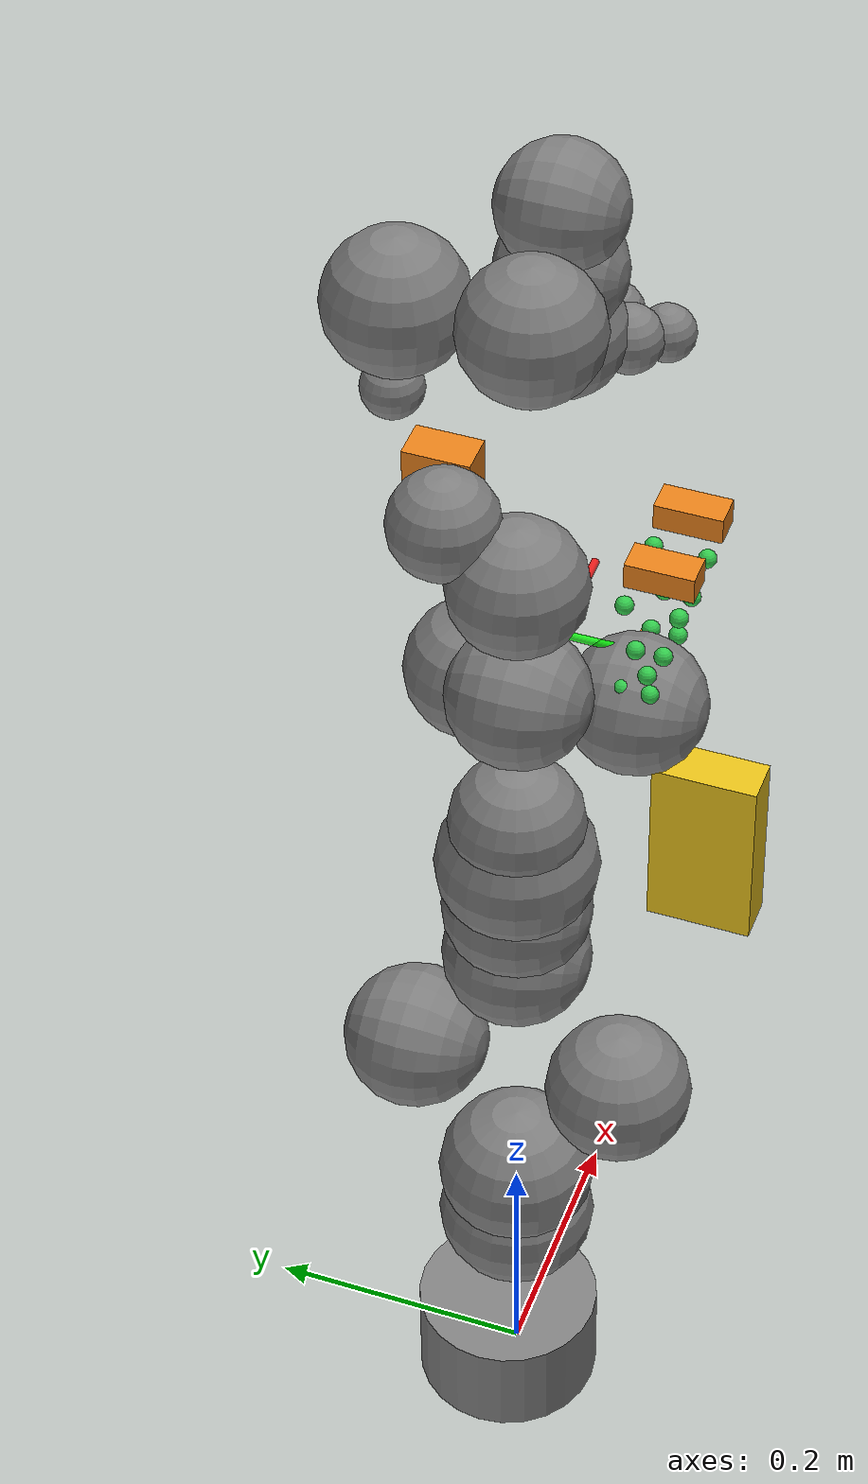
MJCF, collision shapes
<mujoco model="fr3_H_gripper">

  <compiler angle="radian" meshdir="assets" />

  <option integrator="implicitfast" timestep="0.001" solver="Newton" iterations="100" jacobian="auto" tolerance="1e-8" cone="pyramidal" impratio="1" gravity="0 0 -9.81" />
  <option>
    <flag gravity="enable" override="enable" multiccd="enable" />
  </option>

  <default>

    <default class="fr3">
      <joint damping="0.21" armature="0.195" />
      <default class="visual_fr3">
        <geom type="mesh" group="2" contype="0" conaffinity="0" />
      </default>
      <default class="collision">
        <geom type="mesh" group="3" mass="0" density="0" />
      </default>
      <site size="0.001" rgba="0.5 0.5 0.5 0.3" group="4" />
    </default>

    <default class="H_gripper">
      <joint armature="0.1" damping="1.0" />
      <default class="visual">
        <geom type="mesh" contype="0" conaffinity="0" group="1" />
      </default>
      <default class="fingertip_pad_collision_1">
        <geom type="box" group="2" size="0.004 0.007 0.0135" contype="1" conaffinity="1" mass="0.01" pos="0.012 0.0 0.018" solref="0.02 1" solimp="0.95 0.99 0.001" friction="2.0 0.05 0.02" priority="3" rgba="1 0 0 0.5" />
      </default>
      <default class="fingertip_pad_collision_2">
        <geom type="box" group="2" size="0.004 0.007 0.0135" contype="1" conaffinity="1" mass="0.01" pos="-0.012 0.0 0.018" solref="0.02 1" solimp="0.95 0.99 0.001" friction="2.0 0.05 0.02" priority="3" rgba="1 0 0 0.5" />
      </default>
      <default class="rotate_A_link_collision">
        <geom type="box" group="2" size="0.025 0.015 0.025" contype="1" conaffinity="1" mass="0.01" pos="0.085 0 -0.003" solref="0.02 1" solimp="0.95 0.99 0.001" friction="2.0 0.05 0.02" priority="3" rgba="1 0 0 0.5" />
      </default>
      <default class="rotate_B_link_collision">
        <geom type="box" group="2" size="0.025 0.012 0.01" contype="1" conaffinity="1" mass="0.01" pos="-0.085 0.032 0.01" solref="0.02 1" solimp="0.95 0.99 0.001" friction="2.0 0.05 0.02" priority="3" rgba="1 0 0 0.5" />
      </default>
      <default class="rotate_C_link_collision">
        <geom type="box" group="2" size="0.025 0.012 0.01" contype="1" conaffinity="1" mass="0.01" pos="-0.085 -0.032 0.01" solref="0.02 1" solimp="0.95 0.99 0.001" friction="2.0 0.05 0.02" priority="3" rgba="1 0 0 0.5" />
      </default>
    </default>
  </default>

  <asset>
    <mesh name="sugar_mesh" file="../../Fr3HGripperCarry/obj/textured_simple.obj"/>
    <material name="black" rgba=".2 .2 .2 1" />
    <material name="white" rgba="1 1 1 1" />
    <material name="red" rgba="1 0.072272 0.039546 1" />
    <material name="gray" rgba="0.863156 0.863156 0.863157 1" />
    <material name="button_green" rgba="0.102241 0.571125 0.102242 1" />
    <material name="button_red" rgba="0.520996 0.008023 0.013702 1" />
    <material name="button_blue" rgba="0.024157 0.445201 0.737911 1" />
    <material name="off_white" rgba="0.901961 0.921569 0.929412 1" />

    <mesh file="link0_0.obj" />
    <mesh file="link0_1.obj" />
    <mesh file="link0_2.obj" />
    <mesh file="link0_3.obj" />
    <mesh file="link0_4.obj" />
    <mesh file="link0_5.obj" />
    <mesh file="link0_6.obj" />
    <mesh file="link1.obj" />
    <mesh file="link2.obj" />
    <mesh file="link3_0.obj" />
    <mesh file="link3_1.obj" />
    <mesh file="link4_0.obj" />
    <mesh file="link4_1.obj" />
    <mesh file="link5_0.obj" />
    <mesh file="link5_1.obj" />
    <mesh file="link5_2.obj" />
    <mesh file="link6_0.obj" />
    <mesh file="link6_1.obj" />
    <mesh file="link6_2.obj" />
    <mesh file="link6_3.obj" />
    <mesh file="link6_4.obj" />
    <mesh file="link6_5.obj" />
    <mesh file="link6_6.obj" />
    <mesh file="link6_7.obj" />
    <mesh file="link7_0.obj" />
    <mesh file="link7_1.obj" />
    <mesh file="link7_2.obj" />
    <mesh file="link7_3.obj" />

  </asset>

  <worldbody>

        <geom mesh="link0_0" material="black" class="visual_fr3" />
        <geom mesh="link0_1" material="white" class="visual_fr3" />
        <geom mesh="link0_2" material="white" class="visual_fr3" />
        <geom mesh="link0_3" material="white" class="visual_fr3" />
        <geom mesh="link0_4" material="white" class="visual_fr3" />
        <geom mesh="link0_5" material="red" class="visual_fr3" />
        <geom mesh="link0_6" material="black" class="visual_fr3" />

        <geom name="link0_R_col" type="cylinder" size="0.07 0.04" pos="-0.02 0 0.04" class="collision" />

        <body name="fr3_link1" pos="0 0 0.333" childclass="fr3" gravcomp="1">
          <geom name="col_link1_0" type="sphere" size="0.055" pos="0.000 -0.080 0.000" contype="0" conaffinity="0" class="collision" />
          <geom name="col_link1_1" type="sphere" size="0.060" pos="0.000 0.000 -0.120" contype="0" conaffinity="0" class="collision" />
          <geom name="col_link1_2" type="sphere" size="0.060" pos="0.000 0.000 -0.170" contype="0" conaffinity="0" class="collision" />
          <inertial pos="4.128e-07 -0.0181251 -0.0386036" quat="0.998098 -0.0605364 0.00380499 0.0110109" mass="2.92747" diaginertia="0.0239286 0.0227246 0.00610634" />
          <joint name="fr3_joint1" axis="0 0 1" range="-2.7437 2.7437" actuatorfrcrange="-87 87" />

          <geom material="white" mesh="link1" class="visual_fr3" />
          <body name="fr3_link2" quat="1 -1 0 0" gravcomp="1">
            <geom name="col_link2_0" type="sphere" size="0.055" pos="0.000 0.000 0.080" class="collision" />
            <geom name="col_link2_1" type="sphere" size="0.055" pos="0.000 -0.120 0.000" class="collision" />
            <geom name="col_link2_2" type="sphere" size="0.055" pos="0.000 -0.170 0.000" class="collision" />
            <inertial pos="0.00318289 -0.0743222 0.00881461" quat="0.502599 0.584437 -0.465998 0.434366" mass="2.93554" diaginertia="0.0629567 0.0411924 0.0246371" />
            <joint name="fr3_joint2" axis="0 0 1" range="-1.7837 1.7837" actuatorfrcrange="-87 87" />
            <geom material="white" mesh="link2" class="visual_fr3" />

            <body name="fr3_link3" pos="0 -0.316 0" quat="1 1 0 0" gravcomp="1">
              <geom name="col_link3_0" type="sphere" size="0.050" pos="0.000 0.000 -0.060" class="collision" />
              <geom name="col_link3_1" type="sphere" size="0.060" pos="0.000 0.000 -0.100" class="collision" />
              <geom name="col_link3_2" type="sphere" size="0.052" pos="0.080 0.060 0.000" class="collision" />
              <inertial pos="0.0407016 -0.00482006 -0.0289731" quat="0.921025 -0.244161 0.155272 0.260745" mass="2.2449" diaginertia="0.0267409 0.0189869 0.0171587" />
              <joint name="fr3_joint3" axis="0 0 1" range="-2.9007 2.9007" actuatorfrcrange="-87 87" />
              <geom mesh="link3_0" material="white" class="visual_fr3" />
              <geom mesh="link3_1" material="black" class="visual_fr3" />

              <body name="fr3_link4" pos="0.0825 0 0" quat="1 1 0 0" gravcomp="1">
                <geom name="col_link4_0" type="sphere" size="0.052" pos="0.000 0.000 0.060" class="collision" />
                <geom name="col_link4_1" type="sphere" size="0.052" pos="-0.080 0.060 0.000" class="collision" />
                <inertial pos="-0.0459101 0.0630493 -0.00851879" quat="0.438018 0.803311 0.00937812 0.403414" mass="2.6156" diaginertia="0.05139 0.0372717 0.0160047" />
                <joint name="fr3_joint4" axis="0 0 1" range="-3.0421 -0.1518" actuatorfrcrange="-87 87" />
                <geom mesh="link4_0" material="white" class="visual_fr3" />
                <geom mesh="link4_1" material="black" class="visual_fr3" />

                <body name="fr3_link5" pos="-0.0825 0.384 0" quat="1 -1 0 0" gravcomp="1">
                  <geom name="col_link5_0" type="sphere" size="0.050" pos="0.000 0.082 0.000" class="collision" />
                  <geom name="col_link5_1" type="sphere" size="0.050" pos="0.000 0.000 -0.220" class="collision" />
                  <geom name="col_link5_2" type="sphere" size="0.050" pos="0.000 -0.009 0.000" class="collision" />
                  <geom name="col_link5_3" type="sphere" size="0.040" pos="0.000 0.052 -0.180" class="collision" />
                  <geom name="col_link5_4" type="sphere" size="0.022" pos="0.010 0.090 -0.080" class="collision" />
                  <inertial pos="-0.00160396 0.0292536 -0.0972966" quat="0.919031 0.125604 0.0751531 -0.366003" mass="2.32712" diaginertia="0.0579335 0.0449144 0.0130634" />
                  <joint name="fr3_joint5" axis="0 0 1" range="-2.8065 2.8065" actuatorfrcrange="-12 12" armature="0.074" frictionloss="0.763" />
                  <geom mesh="link5_0" material="white" class="visual_fr3" />
                  <geom mesh="link5_1" material="white" class="visual_fr3" />
                  <geom mesh="link5_2" material="black" class="visual_fr3" />

                  <body name="fr3_link6" quat="1 1 0 0" gravcomp="1">
                    <geom name="col_link6_0" type="sphere" size="0.045" pos="0.085 0.035 0.000" class="collision" />
                    <geom name="col_link6_1" type="sphere" size="0.045" pos="0.085 -0.015 0.000" class="collision" />
                    <inertial pos="0.0597131 -0.0410295 -0.0101693" quat="0.621301 0.552665 0.510011 0.220081" mass="1.81704" diaginertia="0.0175039 0.0161123 0.00193529" />
                    <joint name="fr3_joint6" axis="0 0 1" range="0.5445 4.5169" actuatorfrcrange="-12 12" armature="0.074" frictionloss="0.44" />
                    <geom mesh="link6_0" material="button_green" class="visual_fr3" />
                    <geom mesh="link6_1" material="white" class="visual_fr3" />
                    <geom mesh="link6_2" material="white" class="visual_fr3" />
                    <geom mesh="link6_3" material="gray" class="visual_fr3" />
                    <geom mesh="link6_4" material="button_red" class="visual_fr3" />
                    <geom mesh="link6_5" material="white" class="visual_fr3" />
                    <geom mesh="link6_6" material="black" class="visual_fr3" />
                    <geom mesh="link6_7" material="button_blue" class="visual_fr3" />

                    <body name="fr3_link7" pos="0.088 0 0" quat="1 1 0 0" gravcomp="1">
                      <geom name="col_link7_0" type="sphere" size="0.045" pos="0.000 0.000 0.070" class="collision" />
                      <geom name="col_link7_1" type="sphere" size="0.024" pos="0.020 0.040 0.080" class="collision" />
                      <geom name="col_link7_2" type="sphere" size="0.024" pos="0.040 0.020 0.080" class="collision" />
                      <geom name="col_link7_3" type="sphere" size="0.020" pos="0.040 0.060 0.085" class="collision" />
                      <inertial pos="0.00452258 0.00862619 -0.0161633" quat="0.727579 0.0978688 -0.24906 0.63168" mass="0.627143" diaginertia="0.000223836 0.000223642 5.64132e-07" />
                      <joint name="fr3_joint7" axis="0 0 1" range="-3.0159 3.0159" actuatorfrcrange="-12 12" armature="0.074" frictionloss="0.248" />
                      <geom mesh="link7_0" material="black" class="visual_fr3" />
                      <geom mesh="link7_1" material="white" class="visual_fr3" />
                      <geom mesh="link7_2" material="white" class="visual_fr3" />
                      <geom mesh="link7_3" material="black" class="visual_fr3" />

                  <site name="hand_site" pos="0 0 0.310" group="0" />
                      <site name="frame_x" type="cylinder" pos="0.04 0 0.34" euler="0 1.5708 0" size="0.003 0.04" rgba="1 0 0 0.8" group="1" />
                      <site name="frame_y" type="cylinder" pos="0 0.04 0.34" euler="1.5708 0 0" size="0.003 0.04" rgba="0 1 0 0.8" group="1" />
                      <site name="frame_z" type="cylinder" pos="0 0 0.38" euler="0 0 0" size="0.003 0.04" rgba="0 0 1 0.8" group="1" />

                  <body name="hand" childclass="H_gripper" pos="0 0 0.220" gravcomp="1" euler="0 0 -1.5708">
                    <inertial pos="-0.0035758 0.0003736 -0.0180203" mass="1.103393800"
                              quat="0.119741 0.990040 0.022846 -0.070428"
                              diaginertia="8.759326e-04 2.720989e-03 2.800929e-03"/>
                    <site name="gripper_site" type="sphere" pos="0 0 0.143" size="0.005" rgba="1 0 0 1" group="0"/>
                    <geom name="gripper_A_rot_link" type="box" size="0.0250 0.0150 0.0250" pos="0.085000 0.000000 -0.003000" quat="1.000000 0.000000 0.000000 0.000000" contype="1" conaffinity="1" mass="0" group="1" rgba="0.9 0.5 0.1 0.9"/>
                    <geom name="gripper_B_rot_link" type="box" size="0.0250 0.0120 0.0100" pos="-0.085000 0.032000 0.010000" quat="1.000000 0.000000 0.000000 0.000000" contype="1" conaffinity="1" mass="0" group="1" rgba="0.9 0.5 0.1 0.9"/>
                    <geom name="gripper_C_rot_link" type="box" size="0.0250 0.0120 0.0100" pos="-0.085000 -0.032000 0.010000" quat="1.000000 0.000000 0.000000 0.000000" contype="1" conaffinity="1" mass="0" group="1" rgba="0.9 0.5 0.1 0.9"/>
                    <body name="finger_A_slide_link" pos="0.000000 0.000000 0.000000" gravcomp="1">
                      <site name="gripper_pad_1_site" pos="0.054070 0.000036 0.143009" size="0.003" rgba="1 0.6 0 1" group="0"/>
                      <joint name="finger_A_slide_joint" pos="0 0 0" axis="-1 0 0" type="slide" range="0.000 0.050"/>
                      <inertial pos="0.0823484 -0.0001514 0.0583951" mass="0.117427410"
                                quat="0.574311 0.574903 0.409509 -0.414676"
                                diaginertia="1.866282e-05 1.909493e-04 2.022320e-04"/>
                      <geom name="finger_A_sub_link_1" type="sphere" size="0.00670" pos="0.057550 0.000036 0.048000" contype="1" conaffinity="1" mass="0" group="1" rgba="0.2 0.8 0.3 0.35"/>
                      <geom name="finger_A_sub_link_4" type="sphere" size="0.00670" pos="0.066438 0.000036 0.087000" contype="1" conaffinity="1" mass="0" group="1" rgba="0.2 0.8 0.3 0.35"/>
                      <geom name="finger_A_sub_bolt_link_3" type="sphere" size="0.00670" pos="0.057550 0.000036 0.126000" contype="1" conaffinity="1" mass="0" group="1" rgba="0.2 0.8 0.3 0.35"/>
                      <geom name="finger_A_sub_link_7" type="sphere" size="0.00670" pos="0.086438 0.000036 0.087000" contype="1" conaffinity="1" mass="0" group="1" rgba="0.2 0.8 0.3 0.35"/>
                      <geom name="finger_A_sub_bolt_link_4" type="sphere" size="0.00670" pos="0.077550 0.000036 0.126000" contype="1" conaffinity="1" mass="0" group="1" rgba="0.2 0.8 0.3 0.35"/>
                      <geom name="finger_A_sub_link_8" type="sphere" size="0.00670" pos="0.096550 0.000036 0.048000" contype="1" conaffinity="1" mass="0" group="1" rgba="0.2 0.8 0.3 0.35"/>
                      <geom name="finger_A_sub_link_9" type="sphere" size="0.00670" pos="0.075261 0.000036 0.108355" contype="1" conaffinity="1" mass="0" group="1" rgba="0.2 0.8 0.3 0.35"/>
                      <geom name="gripper_pad_1" type="box" size="0.0040 0.0070 0.0135" pos="0.054070 0.000036 0.143009" quat="1.000000 0.000000 0.000000 0.000000" contype="1" conaffinity="1" mass="0" group="1" rgba="0.9 0.5 0.1 0.9"/>
                    </body>
                    <body name="finger_B_slide_link" pos="-0.022149 0.032100 -0.000000" gravcomp="1">
                      <site name="gripper_pad_2_site" pos="-0.031963 0.000000 0.143009" size="0.003" rgba="1 0.6 0 1" group="0"/>
                      <joint name="finger_B_slide_joint" pos="0 0 0" axis="1 0 0" type="slide" range="0.000 0.050"/>
                      <inertial pos="-0.0597930 -0.0020421 0.0581053" mass="0.123233710"
                                quat="0.573940 -0.568202 -0.443112 -0.389090"
                                diaginertia="1.877814e-05 1.790656e-04 1.901851e-04"/>
                      <geom name="finger_B_sub_link_1" type="sphere" size="0.00670" pos="-0.035443 -0.000000 0.048000" contype="1" conaffinity="1" mass="0" group="1" rgba="0.2 0.8 0.3 0.35"/>
                      <geom name="finger_B_sub_link_3" type="sphere" size="0.00670" pos="-0.044331 -0.000000 0.087000" contype="1" conaffinity="1" mass="0" group="1" rgba="0.2 0.8 0.3 0.35"/>
                      <geom name="finger_B_sub_bolt_link_3" type="sphere" size="0.00670" pos="-0.035443 -0.000000 0.126000" contype="1" conaffinity="1" mass="0" group="1" rgba="0.2 0.8 0.3 0.35"/>
                      <geom name="finger_B_sub_bolt_link_7" type="sphere" size="0.00670" pos="-0.064331 0.000000 0.087000" contype="1" conaffinity="1" mass="0" group="1" rgba="0.2 0.8 0.3 0.35"/>
                      <geom name="finger_B_sub_bolt_link_4" type="sphere" size="0.00670" pos="-0.055443 0.000000 0.126000" contype="1" conaffinity="1" mass="0" group="1" rgba="0.2 0.8 0.3 0.35"/>
                      <geom name="finger_B_sub_link_8" type="sphere" size="0.00670" pos="-0.074443 0.000000 0.048000" contype="1" conaffinity="1" mass="0" group="1" rgba="0.2 0.8 0.3 0.35"/>
                      <geom name="gripper_pad_2" type="box" size="0.0040 0.0070 0.0135" pos="-0.031963 0.000000 0.143009" quat="1.000000 0.000000 0.000000 0.000000" contype="1" conaffinity="1" mass="0" group="1" rgba="0.9 0.5 0.1 0.9"/>
                    </body>
                    <body name="finger_C_slide_link" pos="-0.022157 -0.032095 0.000000" gravcomp="1">
                      <site name="gripper_pad_3_site" pos="-0.031960 -0.000000 0.143009" size="0.003" rgba="1 0.6 0 1" group="0"/>
                      <joint name="finger_C_slide_joint" pos="0 0 0" axis="1 0 0" type="slide" range="0.000 0.050"/>
                      <inertial pos="-0.0597902 -0.0020411 0.0581053" mass="0.123233710"
                                quat="0.573943 -0.568201 -0.443104 -0.389097"
                                diaginertia="1.877817e-05 1.790657e-04 1.901852e-04"/>
                      <geom name="finger_C_sub_link_1" type="sphere" size="0.00670" pos="-0.035440 -0.000000 0.048000" contype="1" conaffinity="1" mass="0" group="1" rgba="0.2 0.8 0.3 0.35"/>
                      <geom name="finger_C_sub_link_3" type="sphere" size="0.00670" pos="-0.044328 -0.000000 0.087000" contype="1" conaffinity="1" mass="0" group="1" rgba="0.2 0.8 0.3 0.35"/>
                      <geom name="finger_C_sub_rot_joint_2" type="sphere" size="0.00670" pos="-0.064328 -0.000000 0.087000" contype="1" conaffinity="1" mass="0" group="1" rgba="0.2 0.8 0.3 0.35"/>
                      <geom name="finger_C_sub_bolt_link_3" type="sphere" size="0.00670" pos="-0.035440 -0.000000 0.126000" contype="1" conaffinity="1" mass="0" group="1" rgba="0.2 0.8 0.3 0.35"/>
                      <geom name="finger_C_sub_rot_joint_4" type="sphere" size="0.00670" pos="-0.055440 -0.000000 0.126000" contype="1" conaffinity="1" mass="0" group="1" rgba="0.2 0.8 0.3 0.35"/>
                      <geom name="finger_C_sub_rot_joint_8" type="sphere" size="0.00670" pos="-0.074440 0.000000 0.048000" contype="1" conaffinity="1" mass="0" group="1" rgba="0.2 0.8 0.3 0.35"/>
                      <geom name="finger_C_sub_rot_joint_9" type="sphere" size="0.00670" pos="-0.053151 0.000000 0.108355" contype="1" conaffinity="1" mass="0" group="1" rgba="0.2 0.8 0.3 0.35"/>
                      <geom name="gripper_pad_3" type="box" size="0.0040 0.0070 0.0135" pos="-0.031960 -0.000000 0.143009" quat="1.000000 0.000000 0.000000 0.000000" contype="1" conaffinity="1" mass="0" group="1" rgba="0.9 0.5 0.1 0.9"/>
                    </body>
                  </body>
                    </body>
                  </body>
                </body>
              </body>
            </body>
          </body>
        </body>

    <!-- object freed to be grasped (judo-style): free body on the floor.
         contype/conaffinity=1 -> collides with the fingertip pads (group 1) and floor. -->
    <body name="sugar_box" pos="0.5 0 0.087">
      <freejoint name="box_free"/>
      <geom name="sugar_box_geom" type="box" size="0.0200 0.0470 0.087" mass="0.5"
            rgba="0.9 0.75 0.1 0.3" contype="1" conaffinity="1" group="3"/>
      <!-- VISUAL geom: the scanned mesh. No collision, no mass (the box above owns
           both), pos cancels the mesh's bounding-box centre offset. -->
      <geom name="sugar_mesh_geom" type="mesh" mesh="sugar_mesh"
            rgba="0.85 0.7 0.15 1" pos="-0.0009 0.0015 0.0044" mass="0"
            contype="0" conaffinity="0" group="1"/>
      <site name="object_site" pos="0 0 0" size="0.008" rgba="0.9 0.75 0.1 1" group="0"/>
    </body>
  </worldbody>

  <!-- LITE GRIPPER: every exclude pairs sub-bodies the collapse removed. -->

  <equality>
    <!-- finger B and C slides slaved 1:1 to A -> single driven grasp DOF (grab_motor on A). -->
    <joint name="finger_slide_1" joint1="finger_A_slide_joint" joint2="finger_B_slide_joint" polycoef="0 1 0 0 0" solref="0.002 1"/>
    <joint name="finger_slide_2" joint1="finger_A_slide_joint" joint2="finger_C_slide_joint" polycoef="0 1 0 0 0" solref="0.002 1"/>
    <weld name="grasp" body1="hand" body2="sugar_box" active="false" torquescale="1"/>
  </equality>

  <actuator>
    <motor name="actuator1" joint="fr3_joint1" ctrllimited="true" ctrlrange="-87.0 87.0" />
    <motor name="actuator2" joint="fr3_joint2" ctrllimited="true" ctrlrange="-87.0 87.0" />
    <motor name="actuator3" joint="fr3_joint3" ctrllimited="true" ctrlrange="-87.0 87.0" />
    <motor name="actuator4" joint="fr3_joint4" ctrllimited="true" ctrlrange="-87.0 87.0" />
    <motor name="actuator5" joint="fr3_joint5" ctrllimited="true" ctrlrange="-12.0 12.0" />
    <motor name="actuator6" joint="fr3_joint6" ctrllimited="true" ctrlrange="-12.0 12.0" />
    <motor name="actuator7" joint="fr3_joint7" ctrllimited="true" ctrlrange="-12.0 12.0" />

    <position name="grab_motor" joint="finger_A_slide_joint" kp="200" kv="40" ctrllimited="true" ctrlrange="-0.1 0.1" forcerange="-40 40"/>
    </actuator>
  <sensor>
    <touch name="pad1_touch" site="gripper_pad_1_site"/>
    <touch name="pad2_touch" site="gripper_pad_2_site"/>
    <touch name="pad3_touch" site="gripper_pad_3_site"/>
  </sensor>

</mujoco>
